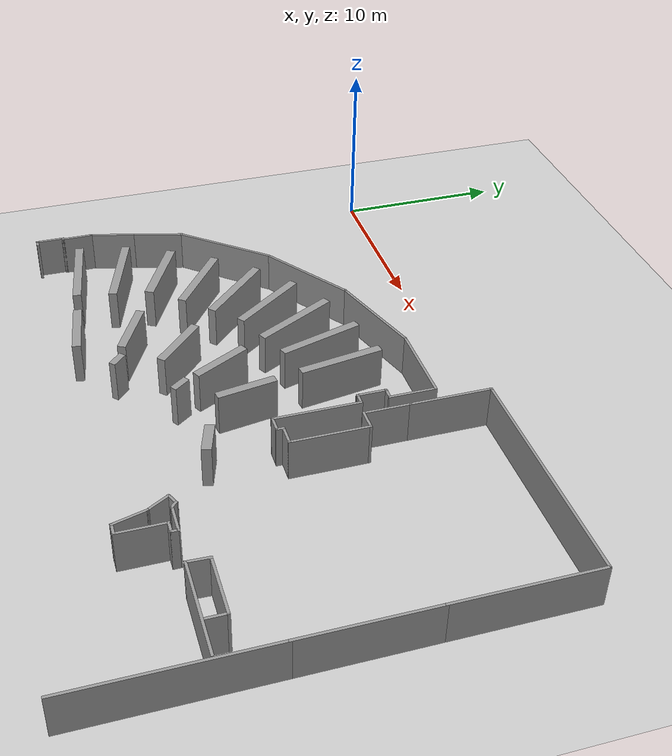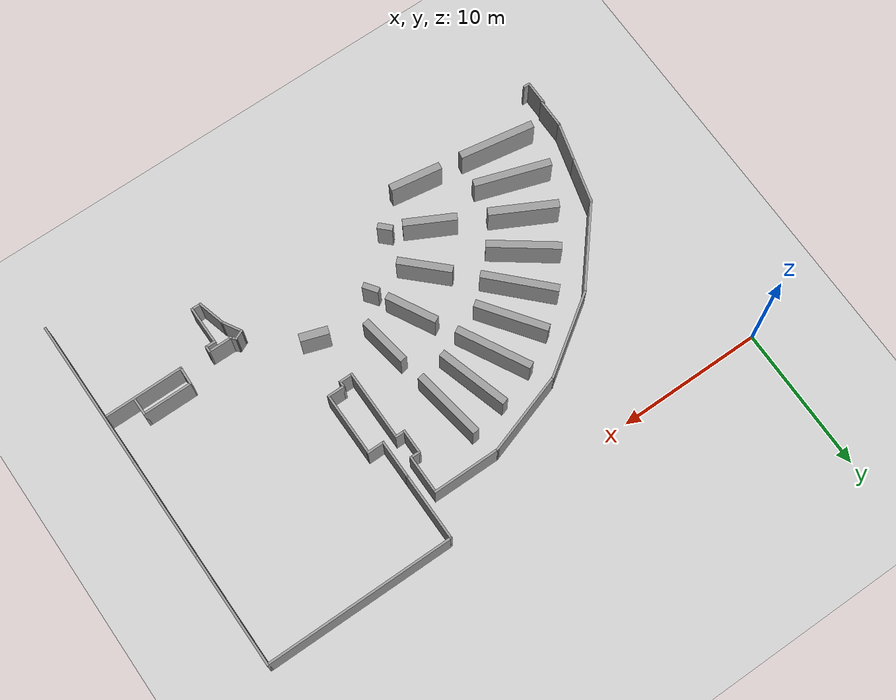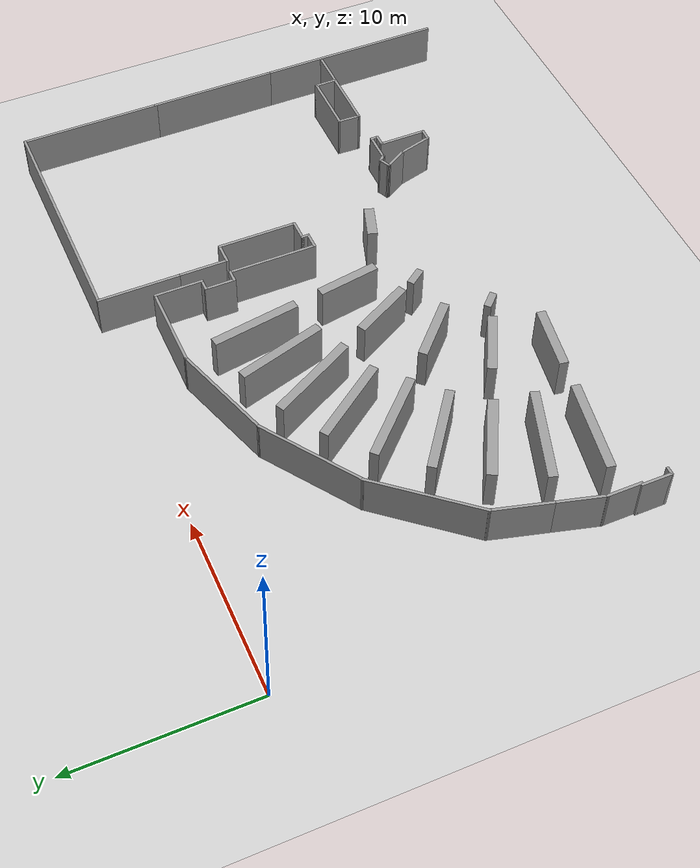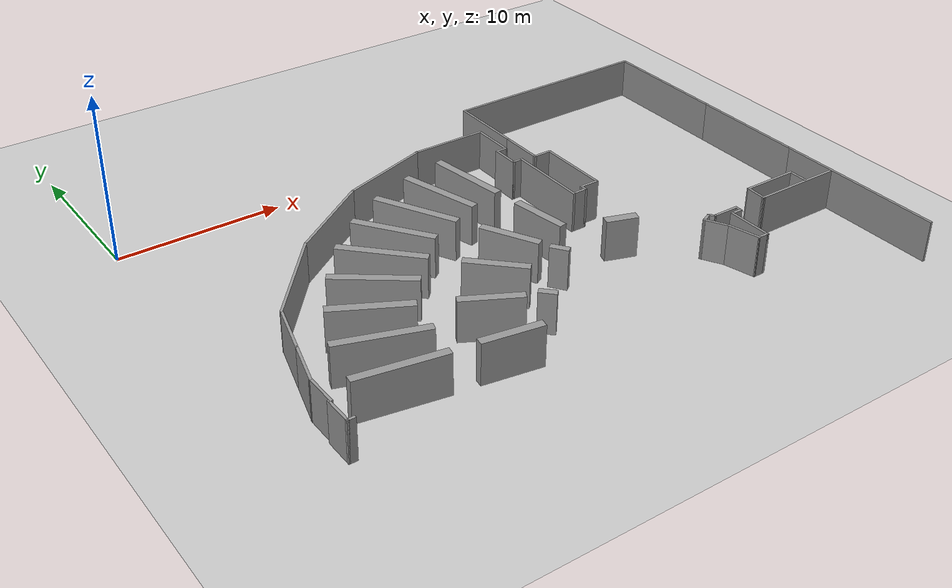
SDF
<sdf version="1.7">
 <world name="default">
  <model name="ground_plane">
   <static>1</static>
   <link name="link">
    <collision name="collision">
     <geometry><plane><normal>0 0 1</normal><size>100 100</size></plane></geometry>
     <surface>
      <contact><collide_bitmask>65535</collide_bitmask></contact>
      <friction><ode><mu>100</mu><mu2>50</mu2></ode></friction>
     </surface>
    </collision>
    <visual name="visual">
     <cast_shadows>0</cast_shadows>
     <geometry><plane><normal>0 0 1</normal><size>100 100</size></plane></geometry>
     <material>
      <script><uri>file://media/materials/scripts/gazebo.material</uri><name>Gazebo/Grey</name></script>
     </material>
    </visual>
   </link>
  </model>
  <model name="libraryModel">
   <pose>18.25 -18.5 0 0 -0 0</pose>
   <link name="Wall_101">
    <collision name="Wall_101_Collision">
     <geometry><box><size>1.5 0.15 2.5</size></box></geometry>
     <pose>0 0 1.25 0 -0 0</pose>
    </collision>
    <visual name="Wall_101_Visual">
     <pose>0 0 1.25 0 -0 0</pose>
     <geometry><box><size>1.5 0.15 2.5</size></box></geometry>
     <material>
      <script><uri>file://media/materials/scripts/gazebo.material</uri><name>Gazebo/Grey</name></script>
      <ambient>1 1 1 1</ambient>
     </material>
     <meta><layer>0</layer></meta>
    </visual>
    <pose>8.65885 -0.242249 0 0 -0 -1.0472</pose>
   </link>
   <link name="Wall_102">
    <collision name="Wall_102_Collision">
     <geometry><box><size>2 0.15 2.5</size></box></geometry>
     <pose>0 0 1.25 0 -0 0</pose>
    </collision>
    <visual name="Wall_102_Visual">
     <pose>0 0 1.25 0 -0 0</pose>
     <geometry><box><size>2 0.15 2.5</size></box></geometry>
     <material>
      <script><uri>file://media/materials/scripts/gazebo.material</uri><name>Gazebo/Grey</name></script>
      <ambient>1 1 1 1</ambient>
     </material>
     <meta><layer>0</layer></meta>
    </visual>
    <pose>9.23576 -1.7203 0 0 -0 -1.309</pose>
   </link>
   <link name="Wall_103">
    <collision name="Wall_103_Collision">
     <geometry><box><size>0.75 0.15 2.5</size></box></geometry>
     <pose>0 0 1.25 0 -0 0</pose>
    </collision>
    <visual name="Wall_103_Visual">
     <pose>0 0 1.25 0 -0 0</pose>
     <geometry><box><size>0.75 0.15 2.5</size></box></geometry>
     <material>
      <script><uri>file://media/materials/scripts/gazebo.material</uri><name>Gazebo/Grey</name></script>
      <ambient>1 1 1 1</ambient>
     </material>
     <meta><layer>0</layer></meta>
    </visual>
    <pose>9.77517 -2.61378 0 0 -0 0</pose>
   </link>
   <link name="Wall_104">
    <collision name="Wall_104_Collision">
     <geometry><box><size>2.75 0.15 2.5</size></box></geometry>
     <pose>0 0 1.25 0 -0 0</pose>
    </collision>
    <visual name="Wall_104_Visual">
     <pose>0 0 1.25 0 -0 0</pose>
     <geometry><box><size>2.75 0.15 2.5</size></box></geometry>
     <material>
      <script><uri>file://media/materials/scripts/gazebo.material</uri><name>Gazebo/Grey</name></script>
      <ambient>1 1 1 1</ambient>
     </material>
     <meta><layer>0</layer></meta>
    </visual>
    <pose>10.0752 -1.31378 0 0 -0 1.5708</pose>
   </link>
   <link name="Wall_105">
    <collision name="Wall_105_Collision">
     <geometry><box><size>0.75 0.15 2.5</size></box></geometry>
     <pose>0 0 1.25 0 -0 0</pose>
    </collision>
    <visual name="Wall_105_Visual">
     <pose>0 0 1.25 0 -0 0</pose>
     <geometry><box><size>0.75 0.15 2.5</size></box></geometry>
     <material>
      <script><uri>file://media/materials/scripts/gazebo.material</uri><name>Gazebo/Grey</name></script>
      <ambient>1 1 1 1</ambient>
     </material>
     <meta><layer>0</layer></meta>
    </visual>
    <pose>10.3752 -0.013779 0 0 -0 0</pose>
   </link>
   <link name="Wall_106">
    <collision name="Wall_106_Collision">
     <geometry><box><size>0.5 0.15 2.5</size></box></geometry>
     <pose>0 0 1.25 0 -0 0</pose>
    </collision>
    <visual name="Wall_106_Visual">
     <pose>0 0 1.25 0 -0 0</pose>
     <geometry><box><size>0.5 0.15 2.5</size></box></geometry>
     <material>
      <script><uri>file://media/materials/scripts/gazebo.material</uri><name>Gazebo/Grey</name></script>
      <ambient>1 1 1 1</ambient>
     </material>
     <meta><layer>0</layer></meta>
    </visual>
    <pose>10.6752 0.161222 0 0 -0 1.5708</pose>
   </link>
   <link name="Wall_107">
    <collision name="Wall_107_Collision">
     <geometry><box><size>1.71407 0.15 2.5</size></box></geometry>
     <pose>0 0 1.25 0 -0 0</pose>
    </collision>
    <visual name="Wall_107_Visual">
     <pose>0 0 1.25 0 -0 0</pose>
     <geometry><box><size>1.71407 0.15 2.5</size></box></geometry>
     <material>
      <script><uri>file://media/materials/scripts/gazebo.material</uri><name>Gazebo/Grey</name></script>
      <ambient>1 1 1 1</ambient>
     </material>
     <meta><layer>0</layer></meta>
    </visual>
    <pose>9.89314 0.33927 0 0 -0 3.13769</pose>
   </link>
   <link name="Wall_108">
    <collision name="Wall_108_Collision">
     <geometry><box><size>0.5 0.15 2.5</size></box></geometry>
     <pose>0 0 1.25 0 -0 0</pose>
    </collision>
    <visual name="Wall_108_Visual">
     <pose>0 0 1.25 0 -0 0</pose>
     <geometry><box><size>0.5 0.15 2.5</size></box></geometry>
     <material>
      <script><uri>file://media/materials/scripts/gazebo.material</uri><name>Gazebo/Grey</name></script>
      <ambient>1 1 1 1</ambient>
     </material>
     <meta><layer>0</layer></meta>
    </visual>
    <pose>8.98736 0.466062 0 0 -0 2.35619</pose>
   </link>
   <link name="Wall_109">
    <collision name="Wall_109_Collision">
     <geometry><box><size>0.746074 0.15 2.5</size></box></geometry>
     <pose>0 0 1.25 0 -0 0</pose>
    </collision>
    <visual name="Wall_109_Visual">
     <pose>0 0 1.25 0 -0 0</pose>
     <geometry><box><size>0.746074 0.15 2.5</size></box></geometry>
     <material>
      <script><uri>file://media/materials/scripts/gazebo.material</uri><name>Gazebo/Grey</name></script>
      <ambient>1 1 1 1</ambient>
     </material>
     <meta><layer>0</layer></meta>
    </visual>
    <pose>8.59248 0.466062 0 0 -0 -2.71344</pose>
   </link>
   <link name="Wall_111">
    <collision name="Wall_111_Collision">
     <geometry><box><size>5.5 0.15 2.5</size></box></geometry>
     <pose>0 0 1.25 0 -0 0</pose>
    </collision>
    <visual name="Wall_111_Visual">
     <pose>0 0 1.25 0 -0 0</pose>
     <geometry><box><size>5.5 0.15 2.5</size></box></geometry>
     <material>
      <script><uri>file://media/materials/scripts/gazebo.material</uri><name>Gazebo/Grey</name></script>
      <ambient>1 1 1 1</ambient>
     </material>
     <meta><layer>0</layer></meta>
    </visual>
    <pose>15.3789 0.231085 0 0 -0 0</pose>
   </link>
   <link name="Wall_127">
    <collision name="Wall_127_Collision">
     <geometry><box><size>5.22507 0.5 2.5</size></box></geometry>
     <pose>0 0 1.25 0 -0 0</pose>
    </collision>
    <visual name="Wall_127_Visual">
     <pose>0 0 1.25 0 -0 0</pose>
     <geometry><box><size>5.22507 0.5 2.5</size></box></geometry>
     <material>
      <script><uri>file://media/materials/scripts/gazebo.material</uri><name>Gazebo/Grey</name></script>
      <ambient>1 1 1 1</ambient>
     </material>
     <meta><layer>0</layer></meta>
    </visual>
    <pose>-3.93287 10.2258 0 0 -0 -1.08254</pose>
   </link>
   <link name="Wall_129">
    <collision name="Wall_129_Collision">
     <geometry><box><size>4.93346 0.5 2.5</size></box></geometry>
     <pose>0 0 1.25 0 -0 0</pose>
    </collision>
    <visual name="Wall_129_Visual">
     <pose>0 0 1.25 0 -0 0</pose>
     <geometry><box><size>4.93346 0.5 2.5</size></box></geometry>
     <material>
      <script><uri>file://media/materials/scripts/gazebo.material</uri><name>Gazebo/Grey</name></script>
      <ambient>1 1 1 1</ambient>
     </material>
     <meta><layer>0</layer></meta>
    </visual>
    <pose>-6.04805 9.1613 0 0 -0 -0.94688</pose>
   </link>
   <link name="Wall_131">
    <collision name="Wall_131_Collision">
     <geometry><box><size>5.07999 0.5 2.5</size></box></geometry>
     <pose>0 0 1.25 0 -0 0</pose>
    </collision>
    <visual name="Wall_131_Visual">
     <pose>0 0 1.25 0 -0 0</pose>
     <geometry><box><size>5.07999 0.5 2.5</size></box></geometry>
     <material>
      <script><uri>file://media/materials/scripts/gazebo.material</uri><name>Gazebo/Grey</name></script>
      <ambient>1 1 1 1</ambient>
     </material>
     <meta><layer>0</layer></meta>
    </visual>
    <pose>-7.78959 7.59265 0 0 -0 -0.798745</pose>
   </link>
   <link name="Wall_133">
    <collision name="Wall_133_Collision">
     <geometry><box><size>4.8492 0.5 2.5</size></box></geometry>
     <pose>0 0 1.25 0 -0 0</pose>
    </collision>
    <visual name="Wall_133_Visual">
     <pose>0 0 1.25 0 -0 0</pose>
     <geometry><box><size>4.8492 0.5 2.5</size></box></geometry>
     <material>
      <script><uri>file://media/materials/scripts/gazebo.material</uri><name>Gazebo/Grey</name></script>
      <ambient>1 1 1 1</ambient>
     </material>
     <meta><layer>0</layer></meta>
    </visual>
    <pose>-9.4245 5.75038 0 0 -0 -0.638036</pose>
   </link>
   <link name="Wall_135">
    <collision name="Wall_135_Collision">
     <geometry><box><size>4.61323 0.55 2.5</size></box></geometry>
     <pose>0 0 1.25 0 -0 0</pose>
    </collision>
    <visual name="Wall_135_Visual">
     <pose>0 0 1.25 0 -0 0</pose>
     <geometry><box><size>4.61323 0.55 2.5</size></box></geometry>
     <material>
      <script><uri>file://media/materials/scripts/gazebo.material</uri><name>Gazebo/Grey</name></script>
      <ambient>1 1 1 1</ambient>
     </material>
     <meta><layer>0</layer></meta>
    </visual>
    <pose>-10.8759 3.67924 0 0 -0 2.65712</pose>
   </link>
   <link name="Wall_137">
    <collision name="Wall_137_Collision">
     <geometry><box><size>5.21597 0.5 2.5</size></box></geometry>
     <pose>0 0 1.25 0 -0 0</pose>
    </collision>
    <visual name="Wall_137_Visual">
     <pose>0 0 1.25 0 -0 0</pose>
     <geometry><box><size>5.21597 0.5 2.5</size></box></geometry>
     <material>
      <script><uri>file://media/materials/scripts/gazebo.material</uri><name>Gazebo/Grey</name></script>
      <ambient>1 1 1 1</ambient>
     </material>
     <meta><layer>0</layer></meta>
    </visual>
    <pose>-11.6954 1.29706 0 0 -0 -0.319369</pose>
   </link>
   <link name="Wall_139">
    <collision name="Wall_139_Collision">
     <geometry><box><size>5.16361 0.5 2.5</size></box></geometry>
     <pose>0 0 1.25 0 -0 0</pose>
    </collision>
    <visual name="Wall_139_Visual">
     <pose>0 0 1.25 0 -0 0</pose>
     <geometry><box><size>5.16361 0.5 2.5</size></box></geometry>
     <material>
      <script><uri>file://media/materials/scripts/gazebo.material</uri><name>Gazebo/Grey</name></script>
      <ambient>1 1 1 1</ambient>
     </material>
     <meta><layer>0</layer></meta>
    </visual>
    <pose>-12.2101 -1.15593 0 0 -0 -0.16715</pose>
   </link>
   <link name="Wall_141">
    <collision name="Wall_141_Collision">
     <geometry><box><size>3.55121 0.5 2.5</size></box></geometry>
     <pose>0 0 1.25 0 -0 0</pose>
    </collision>
    <visual name="Wall_141_Visual">
     <pose>0 0 1.25 0 -0 0</pose>
     <geometry><box><size>3.55121 0.5 2.5</size></box></geometry>
     <material>
      <script><uri>file://media/materials/scripts/gazebo.material</uri><name>Gazebo/Grey</name></script>
      <ambient>1 1 1 1</ambient>
     </material>
     <meta><layer>0</layer></meta>
    </visual>
    <pose>-6.4409 -2.02681 0 0 -0 -0.155446</pose>
   </link>
   <link name="Wall_143">
    <collision name="Wall_143_Collision">
     <geometry><box><size>3.51982 0.5 2.5</size></box></geometry>
     <pose>0 0 1.25 0 -0 0</pose>
    </collision>
    <visual name="Wall_143_Visual">
     <pose>0 0 1.25 0 -0 0</pose>
     <geometry><box><size>3.51982 0.5 2.5</size></box></geometry>
     <material>
      <script><uri>file://media/materials/scripts/gazebo.material</uri><name>Gazebo/Grey</name></script>
      <ambient>1 1 1 1</ambient>
     </material>
     <meta><layer>0</layer></meta>
    </visual>
    <pose>-5.51879 0.933116 0 0 -0 -0.483926</pose>
   </link>
   <link name="Wall_145">
    <collision name="Wall_145_Collision">
     <geometry><box><size>3.61835 0.5 2.5</size></box></geometry>
     <pose>0 0 1.25 0 -0 0</pose>
    </collision>
    <visual name="Wall_145_Visual">
     <pose>0 0 1.25 0 -0 0</pose>
     <geometry><box><size>3.61835 0.5 2.5</size></box></geometry>
     <material>
      <script><uri>file://media/materials/scripts/gazebo.material</uri><name>Gazebo/Grey</name></script>
      <ambient>1 1 1 1</ambient>
     </material>
     <meta><layer>0</layer></meta>
    </visual>
    <pose>-3.51427 3.27261 0 0 -0 -0.772674</pose>
   </link>
   <link name="Wall_147">
    <collision name="Wall_147_Collision">
     <geometry><box><size>3.54199 0.5 2.5</size></box></geometry>
     <pose>0 0 1.25 0 -0 0</pose>
    </collision>
    <visual name="Wall_147_Visual">
     <pose>0 0 1.25 0 -0 0</pose>
     <geometry><box><size>3.54199 0.5 2.5</size></box></geometry>
     <material>
      <script><uri>file://media/materials/scripts/gazebo.material</uri><name>Gazebo/Grey</name></script>
      <ambient>1 1 1 1</ambient>
     </material>
     <meta><layer>0</layer></meta>
    </visual>
    <pose>-1.21875 5.15505 0 0 -0 -1.08263</pose>
   </link>
   <link name="Wall_149">
    <collision name="Wall_149_Collision">
     <geometry><box><size>3.46346 0.5 2.5</size></box></geometry>
     <pose>0 0 1.25 0 -0 0</pose>
    </collision>
    <visual name="Wall_149_Visual">
     <pose>0 0 1.25 0 -0 0</pose>
     <geometry><box><size>3.46346 0.5 2.5</size></box></geometry>
     <material>
      <script><uri>file://media/materials/scripts/gazebo.material</uri><name>Gazebo/Grey</name></script>
      <ambient>1 1 1 1</ambient>
     </material>
     <meta><layer>0</layer></meta>
    </visual>
    <pose>1.38052 5.95619 0 0 -0 -1.41247</pose>
   </link>
   <link name="Wall_15">
    <collision name="Wall_15_Collision">
     <geometry><box><size>0.5 0.15 2.5</size></box></geometry>
     <pose>0 0 1.25 0 -0 0</pose>
    </collision>
    <visual name="Wall_15_Visual">
     <pose>0 0 1.25 0 -0 0</pose>
     <geometry><box><size>0.5 0.15 2.5</size></box></geometry>
     <material>
      <script><uri>file://media/materials/scripts/gazebo.material</uri><name>Gazebo/Grey</name></script>
      <ambient>1 1 1 1</ambient>
     </material>
     <meta><layer>0</layer></meta>
    </visual>
    <pose>-16.0713 -3.1742 0 0 -0 3.14159</pose>
   </link>
   <link name="Wall_152">
    <collision name="Wall_152_Collision">
     <geometry><box><size>5.03352 0.5 2.5</size></box></geometry>
     <pose>0 0 1.25 0 -0 0</pose>
    </collision>
    <visual name="Wall_152_Visual">
     <pose>0 0 1.25 0 -0 0</pose>
     <geometry><box><size>5.03352 0.5 2.5</size></box></geometry>
     <material>
      <script><uri>file://media/materials/scripts/gazebo.material</uri><name>Gazebo/Grey</name></script>
      <ambient>1 1 1 1</ambient>
     </material>
     <meta><layer>0</layer></meta>
    </visual>
    <pose>-1.76386 11.0787 0 0 -0 -1.28734</pose>
   </link>
   <link name="Wall_154">
    <collision name="Wall_154_Collision">
     <geometry><box><size>4.92429 0.5 2.5</size></box></geometry>
     <pose>0 0 1.25 0 -0 0</pose>
    </collision>
    <visual name="Wall_154_Visual">
     <pose>0 0 1.25 0 -0 0</pose>
     <geometry><box><size>4.92429 0.5 2.5</size></box></geometry>
     <material>
      <script><uri>file://media/materials/scripts/gazebo.material</uri><name>Gazebo/Grey</name></script>
      <ambient>1 1 1 1</ambient>
     </material>
     <meta><layer>0</layer></meta>
    </visual>
    <pose>0.478676 11.5802 0 0 -0 -1.4162</pose>
   </link>
   <link name="Wall_157">
    <collision name="Wall_157_Collision">
     <geometry><box><size>1.25 0.15 2.5</size></box></geometry>
     <pose>0 0 1.25 0 -0 0</pose>
    </collision>
    <visual name="Wall_157_Visual">
     <pose>0 0 1.25 0 -0 0</pose>
     <geometry><box><size>1.25 0.15 2.5</size></box></geometry>
     <material>
      <script><uri>file://media/materials/scripts/gazebo.material</uri><name>Gazebo/Grey</name></script>
      <ambient>1 1 1 1</ambient>
     </material>
     <meta><layer>0</layer></meta>
    </visual>
    <pose>16.0983 0.865296 0 0 -0 1.5708</pose>
   </link>
   <link name="Wall_158">
    <collision name="Wall_158_Collision">
     <geometry><box><size>3.5 0.15 2.5</size></box></geometry>
     <pose>0 0 1.25 0 -0 0</pose>
    </collision>
    <visual name="Wall_158_Visual">
     <pose>0 0 1.25 0 -0 0</pose>
     <geometry><box><size>3.5 0.15 2.5</size></box></geometry>
     <material>
      <script><uri>file://media/materials/scripts/gazebo.material</uri><name>Gazebo/Grey</name></script>
      <ambient>1 1 1 1</ambient>
     </material>
     <meta><layer>0</layer></meta>
    </visual>
    <pose>14.4233 1.4153 0 0 -0 3.14159</pose>
   </link>
   <link name="Wall_159">
    <collision name="Wall_159_Collision">
     <geometry><box><size>1.33504 0.15 2.5</size></box></geometry>
     <pose>0 0 1.25 0 -0 0</pose>
    </collision>
    <visual name="Wall_159_Visual">
     <pose>0 0 1.25 0 -0 0</pose>
     <geometry><box><size>1.33504 0.15 2.5</size></box></geometry>
     <material>
      <script><uri>file://media/materials/scripts/gazebo.material</uri><name>Gazebo/Grey</name></script>
      <ambient>1 1 1 1</ambient>
     </material>
     <meta><layer>0</layer></meta>
    </visual>
    <pose>12.7261 0.823191 0 0 -0 -1.60824</pose>
   </link>
   <link name="Wall_16">
    <collision name="Wall_16_Collision">
     <geometry><box><size>1.75 0.15 2.5</size></box></geometry>
     <pose>0 0 1.25 0 -0 0</pose>
    </collision>
    <visual name="Wall_16_Visual">
     <pose>0 0 1.25 0 -0 0</pose>
     <geometry><box><size>1.75 0.15 2.5</size></box></geometry>
     <material>
      <script><uri>file://media/materials/scripts/gazebo.material</uri><name>Gazebo/Grey</name></script>
      <ambient>1 1 1 1</ambient>
     </material>
     <meta><layer>0</layer></meta>
    </visual>
    <pose>-16.2463 -2.3742 0 0 -0 1.5708</pose>
   </link>
   <link name="Wall_17">
    <collision name="Wall_17_Collision">
     <geometry><box><size>0.25 0.15 2.5</size></box></geometry>
     <pose>0 0 1.25 0 -0 0</pose>
    </collision>
    <visual name="Wall_17_Visual">
     <pose>0 0 1.25 0 -0 0</pose>
     <geometry><box><size>0.25 0.15 2.5</size></box></geometry>
     <material>
      <script><uri>file://media/materials/scripts/gazebo.material</uri><name>Gazebo/Grey</name></script>
      <ambient>1 1 1 1</ambient>
     </material>
     <meta><layer>0</layer></meta>
    </visual>
    <pose>-16.1963 -1.5742 0 0 -0 0</pose>
   </link>
   <link name="Wall_18">
    <collision name="Wall_18_Collision">
     <geometry><box><size>2 0.15 2.5</size></box></geometry>
     <pose>0 0 1.25 0 -0 0</pose>
    </collision>
    <visual name="Wall_18_Visual">
     <pose>0 0 1.25 0 -0 0</pose>
     <geometry><box><size>2 0.15 2.5</size></box></geometry>
     <material>
      <script><uri>file://media/materials/scripts/gazebo.material</uri><name>Gazebo/Grey</name></script>
      <ambient>1 1 1 1</ambient>
     </material>
     <meta><layer>0</layer></meta>
    </visual>
    <pose>-16.1463 -0.649204 0 0 -0 1.5708</pose>
   </link>
   <link name="Wall_19">
    <collision name="Wall_19_Collision">
     <geometry><box><size>2.75 0.15 2.5</size></box></geometry>
     <pose>0 0 1.25 0 -0 0</pose>
    </collision>
    <visual name="Wall_19_Visual">
     <pose>0 0 1.25 0 -0 0</pose>
     <geometry><box><size>2.75 0.15 2.5</size></box></geometry>
     <material>
      <script><uri>file://media/materials/scripts/gazebo.material</uri><name>Gazebo/Grey</name></script>
      <ambient>1 1 1 1</ambient>
     </material>
     <meta><layer>0</layer></meta>
    </visual>
    <pose>-15.8099 1.5315 0 0 -0 1.309</pose>
   </link>
   <link name="Wall_21">
    <collision name="Wall_21_Collision">
     <geometry><box><size>3.25 0.15 2.5</size></box></geometry>
     <pose>0 0 1.25 0 -0 0</pose>
    </collision>
    <visual name="Wall_21_Visual">
     <pose>0 0 1.25 0 -0 0</pose>
     <geometry><box><size>3.25 0.15 2.5</size></box></geometry>
     <material>
      <script><uri>file://media/materials/scripts/gazebo.material</uri><name>Gazebo/Grey</name></script>
      <ambient>1 1 1 1</ambient>
     </material>
     <meta><layer>0</layer></meta>
    </visual>
    <pose>-15.0723 4.28439 0 0 -0 1.309</pose>
   </link>
   <link name="Wall_22">
    <collision name="Wall_22_Collision">
     <geometry><box><size>6.32238 0.15 2.5</size></box></geometry>
     <pose>0 0 1.25 0 -0 0</pose>
    </collision>
    <visual name="Wall_22_Visual">
     <pose>0 0 1.25 0 -0 0</pose>
     <geometry><box><size>6.32238 0.15 2.5</size></box></geometry>
     <material>
      <script><uri>file://media/materials/scripts/gazebo.material</uri><name>Gazebo/Grey</name></script>
      <ambient>1 1 1 1</ambient>
     </material>
     <meta><layer>0</layer></meta>
    </visual>
    <pose>-12.6884 8.14661 0 0 -0 0.873106</pose>
   </link>
   <link name="Wall_24">
    <collision name="Wall_24_Collision">
     <geometry><box><size>6.12348 0.15 2.5</size></box></geometry>
     <pose>0 0 1.25 0 -0 0</pose>
    </collision>
    <visual name="Wall_24_Visual">
     <pose>0 0 1.25 0 -0 0</pose>
     <geometry><box><size>6.12348 0.15 2.5</size></box></geometry>
     <material>
      <script><uri>file://media/materials/scripts/gazebo.material</uri><name>Gazebo/Grey</name></script>
      <ambient>1 1 1 1</ambient>
     </material>
     <meta><layer>0</layer></meta>
    </visual>
    <pose>-8.24419 12.2034 0 0 -0 0.602142</pose>
   </link>
   <link name="Wall_25">
    <collision name="Wall_25_Collision">
     <geometry><box><size>5.89571 0.15 2.5</size></box></geometry>
     <pose>0 0 1.25 0 -0 0</pose>
    </collision>
    <visual name="Wall_25_Visual">
     <pose>0 0 1.25 0 -0 0</pose>
     <geometry><box><size>5.89571 0.15 2.5</size></box></geometry>
     <material>
      <script><uri>file://media/materials/scripts/gazebo.material</uri><name>Gazebo/Grey</name></script>
      <ambient>1 1 1 1</ambient>
     </material>
     <meta><layer>0</layer></meta>
    </visual>
    <pose>-3.05062 14.7832 0 0 -0 0.314302</pose>
   </link>
   <link name="Wall_26">
    <collision name="Wall_26_Collision">
     <geometry><box><size>4.75 0.15 2.5</size></box></geometry>
     <pose>0 0 1.25 0 -0 0</pose>
    </collision>
    <visual name="Wall_26_Visual">
     <pose>0 0 1.25 0 -0 0</pose>
     <geometry><box><size>4.75 0.15 2.5</size></box></geometry>
     <material>
      <script><uri>file://media/materials/scripts/gazebo.material</uri><name>Gazebo/Grey</name></script>
      <ambient>1 1 1 1</ambient>
     </material>
     <meta><layer>0</layer></meta>
    </visual>
    <pose>1.9817 15.6714 0 0 -0 2e-06</pose>
   </link>
   <link name="Wall_27">
    <collision name="Wall_27_Collision">
     <geometry><box><size>2.75 0.15 2.5</size></box></geometry>
     <pose>0 0 1.25 0 -0 0</pose>
    </collision>
    <visual name="Wall_27_Visual">
     <pose>0 0 1.25 0 -0 0</pose>
     <geometry><box><size>2.75 0.15 2.5</size></box></geometry>
     <material>
      <script><uri>file://media/materials/scripts/gazebo.material</uri><name>Gazebo/Grey</name></script>
      <ambient>1 1 1 1</ambient>
     </material>
     <meta><layer>0</layer></meta>
    </visual>
    <pose>4.28189 14.3714 0 0 -0 -1.5708</pose>
   </link>
   <link name="Wall_28">
    <collision name="Wall_28_Collision">
     <geometry><box><size>0.75 0.15 2.5</size></box></geometry>
     <pose>0 0 1.25 0 -0 0</pose>
    </collision>
    <visual name="Wall_28_Visual">
     <pose>0 0 1.25 0 -0 0</pose>
     <geometry><box><size>0.75 0.15 2.5</size></box></geometry>
     <material>
      <script><uri>file://media/materials/scripts/gazebo.material</uri><name>Gazebo/Grey</name></script>
      <ambient>1 1 1 1</ambient>
     </material>
     <meta><layer>0</layer></meta>
    </visual>
    <pose>3.9817 13.0714 0 0 -0 -3.14158</pose>
   </link>
   <link name="Wall_29">
    <collision name="Wall_29_Collision">
     <geometry><box><size>1.75 0.15 2.5</size></box></geometry>
     <pose>0 0 1.25 0 -0 0</pose>
    </collision>
    <visual name="Wall_29_Visual">
     <pose>0 0 1.25 0 -0 0</pose>
     <geometry><box><size>1.75 0.15 2.5</size></box></geometry>
     <material>
      <script><uri>file://media/materials/scripts/gazebo.material</uri><name>Gazebo/Grey</name></script>
      <ambient>1 1 1 1</ambient>
     </material>
     <meta><layer>0</layer></meta>
    </visual>
    <pose>3.6815 12.2714 0 0 -0 -1.5708</pose>
   </link>
   <link name="Wall_30">
    <collision name="Wall_30_Collision">
     <geometry><box><size>0.75 0.15 2.5</size></box></geometry>
     <pose>0 0 1.25 0 -0 0</pose>
    </collision>
    <visual name="Wall_30_Visual">
     <pose>0 0 1.25 0 -0 0</pose>
     <geometry><box><size>0.75 0.15 2.5</size></box></geometry>
     <material>
      <script><uri>file://media/materials/scripts/gazebo.material</uri><name>Gazebo/Grey</name></script>
      <ambient>1 1 1 1</ambient>
     </material>
     <meta><layer>0</layer></meta>
    </visual>
    <pose>3.9815 11.4714 0 0 -0 0</pose>
   </link>
   <link name="Wall_31">
    <collision name="Wall_31_Collision">
     <geometry><box><size>5 0.15 2.5</size></box></geometry>
     <pose>0 0 1.25 0 -0 0</pose>
    </collision>
    <visual name="Wall_31_Visual">
     <pose>0 0 1.25 0 -0 0</pose>
     <geometry><box><size>5 0.15 2.5</size></box></geometry>
     <material>
      <script><uri>file://media/materials/scripts/gazebo.material</uri><name>Gazebo/Grey</name></script>
      <ambient>1 1 1 1</ambient>
     </material>
     <meta><layer>0</layer></meta>
    </visual>
    <pose>4.2815 9.04638 0 0 -0 -1.5708</pose>
   </link>
   <link name="Wall_33">
    <collision name="Wall_33_Collision">
     <geometry><box><size>1 0.15 2.5</size></box></geometry>
     <pose>0 0 1.25 0 -0 0</pose>
    </collision>
    <visual name="Wall_33_Visual">
     <pose>0 0 1.25 0 -0 0</pose>
     <geometry><box><size>1 0.15 2.5</size></box></geometry>
     <material>
      <script><uri>file://media/materials/scripts/gazebo.material</uri><name>Gazebo/Grey</name></script>
      <ambient>1 1 1 1</ambient>
     </material>
     <meta><layer>0</layer></meta>
    </visual>
    <pose>4.7065 6.62138 0 0 -0 0</pose>
   </link>
   <link name="Wall_34">
    <collision name="Wall_34_Collision">
     <geometry><box><size>0.5 0.15 2.5</size></box></geometry>
     <pose>0 0 1.25 0 -0 0</pose>
    </collision>
    <visual name="Wall_34_Visual">
     <pose>0 0 1.25 0 -0 0</pose>
     <geometry><box><size>0.5 0.15 2.5</size></box></geometry>
     <material>
      <script><uri>file://media/materials/scripts/gazebo.material</uri><name>Gazebo/Grey</name></script>
      <ambient>1 1 1 1</ambient>
     </material>
     <meta><layer>0</layer></meta>
    </visual>
    <pose>5.1315 6.79638 0 0 -0 1.5708</pose>
   </link>
   <link name="Wall_35">
    <collision name="Wall_35_Collision">
     <geometry><box><size>1.25 0.15 2.5</size></box></geometry>
     <pose>0 0 1.25 0 -0 0</pose>
    </collision>
    <visual name="Wall_35_Visual">
     <pose>0 0 1.25 0 -0 0</pose>
     <geometry><box><size>1.25 0.15 2.5</size></box></geometry>
     <material>
      <script><uri>file://media/materials/scripts/gazebo.material</uri><name>Gazebo/Grey</name></script>
      <ambient>1 1 1 1</ambient>
     </material>
     <meta><layer>0</layer></meta>
    </visual>
    <pose>5.6815 6.97138 0 0 -0 0</pose>
   </link>
   <link name="Wall_36">
    <collision name="Wall_36_Collision">
     <geometry><box><size>4.5 0.15 2.5</size></box></geometry>
     <pose>0 0 1.25 0 -0 0</pose>
    </collision>
    <visual name="Wall_36_Visual">
     <pose>0 0 1.25 0 -0 0</pose>
     <geometry><box><size>4.5 0.15 2.5</size></box></geometry>
     <material>
      <script><uri>file://media/materials/scripts/gazebo.material</uri><name>Gazebo/Grey</name></script>
      <ambient>1 1 1 1</ambient>
     </material>
     <meta><layer>0</layer></meta>
    </visual>
    <pose>6.2315 9.14638 0 0 -0 1.5708</pose>
   </link>
   <link name="Wall_37">
    <collision name="Wall_37_Collision">
     <geometry><box><size>1.25 0.15 2.5</size></box></geometry>
     <pose>0 0 1.25 0 -0 0</pose>
    </collision>
    <visual name="Wall_37_Visual">
     <pose>0 0 1.25 0 -0 0</pose>
     <geometry><box><size>1.25 0.15 2.5</size></box></geometry>
     <material>
      <script><uri>file://media/materials/scripts/gazebo.material</uri><name>Gazebo/Grey</name></script>
      <ambient>1 1 1 1</ambient>
     </material>
     <meta><layer>0</layer></meta>
    </visual>
    <pose>5.6815 11.3214 0 0 -0 3.14159</pose>
   </link>
   <link name="Wall_38">
    <collision name="Wall_38_Collision">
     <geometry><box><size>2.75 0.15 2.5</size></box></geometry>
     <pose>0 0 1.25 0 -0 0</pose>
    </collision>
    <visual name="Wall_38_Visual">
     <pose>0 0 1.25 0 -0 0</pose>
     <geometry><box><size>2.75 0.15 2.5</size></box></geometry>
     <material>
      <script><uri>file://media/materials/scripts/gazebo.material</uri><name>Gazebo/Grey</name></script>
      <ambient>1 1 1 1</ambient>
     </material>
     <meta><layer>0</layer></meta>
    </visual>
    <pose>5.1315 12.6214 0 0 -0 1.5708</pose>
   </link>
   <link name="Wall_40">
    <collision name="Wall_40_Collision">
     <geometry><box><size>4.75 0.15 2.5</size></box></geometry>
     <pose>0 0 1.25 0 -0 0</pose>
    </collision>
    <visual name="Wall_40_Visual">
     <pose>0 0 1.25 0 -0 0</pose>
     <geometry><box><size>4.75 0.15 2.5</size></box></geometry>
     <material>
      <script><uri>file://media/materials/scripts/gazebo.material</uri><name>Gazebo/Grey</name></script>
      <ambient>1 1 1 1</ambient>
     </material>
     <meta><layer>0</layer></meta>
    </visual>
    <pose>5.1315 16.2214 0 0 -0 1.5708</pose>
   </link>
   <link name="Wall_41">
    <collision name="Wall_41_Collision">
     <geometry><box><size>13.25 0.15 2.5</size></box></geometry>
     <pose>0 0 1.25 0 -0 0</pose>
    </collision>
    <visual name="Wall_41_Visual">
     <pose>0 0 1.25 0 -0 0</pose>
     <geometry><box><size>13.25 0.15 2.5</size></box></geometry>
     <material>
      <script><uri>file://media/materials/scripts/gazebo.material</uri><name>Gazebo/Grey</name></script>
      <ambient>1 1 1 1</ambient>
     </material>
     <meta><layer>0</layer></meta>
    </visual>
    <pose>11.6815 18.5214 0 0 -0 0</pose>
   </link>
   <link name="Wall_42">
    <collision name="Wall_42_Collision">
     <geometry><box><size>8 0.15 2.5</size></box></geometry>
     <pose>0 0 1.25 0 -0 0</pose>
    </collision>
    <visual name="Wall_42_Visual">
     <pose>0 0 1.25 0 -0 0</pose>
     <geometry><box><size>8 0.15 2.5</size></box></geometry>
     <material>
      <script><uri>file://media/materials/scripts/gazebo.material</uri><name>Gazebo/Grey</name></script>
      <ambient>1 1 1 1</ambient>
     </material>
     <meta><layer>0</layer></meta>
    </visual>
    <pose>18.2315 14.5964 0 0 -0 -1.5708</pose>
   </link>
   <link name="Wall_44">
    <collision name="Wall_44_Collision">
     <geometry><box><size>7.25 0.15 2.5</size></box></geometry>
     <pose>0 0 1.25 0 -0 0</pose>
    </collision>
    <visual name="Wall_44_Visual">
     <pose>0 0 1.25 0 -0 0</pose>
     <geometry><box><size>7.25 0.15 2.5</size></box></geometry>
     <material>
      <script><uri>file://media/materials/scripts/gazebo.material</uri><name>Gazebo/Grey</name></script>
      <ambient>1 1 1 1</ambient>
     </material>
     <meta><layer>0</layer></meta>
    </visual>
    <pose>18.2315 7.12138 0 0 -0 -1.5708</pose>
   </link>
   <link name="Wall_47">
    <collision name="Wall_47_Collision">
     <geometry><box><size>10.5 0.15 2.5</size></box></geometry>
     <pose>0 0 1.25 0 -0 0</pose>
    </collision>
    <visual name="Wall_47_Visual">
     <pose>0 0 1.25 0 -0 0</pose>
     <geometry><box><size>10.5 0.15 2.5</size></box></geometry>
     <material>
      <script><uri>file://media/materials/scripts/gazebo.material</uri><name>Gazebo/Grey</name></script>
      <ambient>1 1 1 1</ambient>
     </material>
     <meta><layer>0</layer></meta>
    </visual>
    <pose>18.2315 -1.60362 0 0 -0 -1.5708</pose>
   </link>
   <link name="Wall_93">
    <collision name="Wall_93_Collision">
     <geometry><box><size>1.00104 0.4 2.5</size></box></geometry>
     <pose>0 0 1.25 0 -0 0</pose>
    </collision>
    <visual name="Wall_93_Visual">
     <pose>0 0 1.25 0 -0 0</pose>
     <geometry><box><size>1.00104 0.4 2.5</size></box></geometry>
     <material>
      <script><uri>file://media/materials/scripts/gazebo.material</uri><name>Gazebo/Grey</name></script>
      <ambient>1 1 1 1</ambient>
     </material>
     <meta><layer>0</layer></meta>
    </visual>
    <pose>-2.91261 -0.287112 0 0 -0 -0.785398</pose>
   </link>
   <link name="Wall_97">
    <collision name="Wall_97_Collision">
     <geometry><box><size>1.08045 0.4 2.5</size></box></geometry>
     <pose>0 0 1.25 0 -0 0</pose>
    </collision>
    <visual name="Wall_97_Visual">
     <pose>0 0 1.25 0 -0 0</pose>
     <geometry><box><size>1.08045 0.4 2.5</size></box></geometry>
     <material>
      <script><uri>file://media/materials/scripts/gazebo.material</uri><name>Gazebo/Grey</name></script>
      <ambient>1 1 1 1</ambient>
     </material>
     <meta><layer>0</layer></meta>
    </visual>
    <pose>0.125895 2.59789 0 0 -0 -0.938759</pose>
   </link>
   <link name="Wall_99">
    <collision name="Wall_99_Collision">
     <geometry><box><size>1.89824 0.55 2.5</size></box></geometry>
     <pose>0 0 1.25 0 -0 0</pose>
    </collision>
    <visual name="Wall_99_Visual">
     <pose>0 0 1.25 0 -0 0</pose>
     <geometry><box><size>1.89824 0.55 2.5</size></box></geometry>
     <material>
      <script><uri>file://media/materials/scripts/gazebo.material</uri><name>Gazebo/Grey</name></script>
      <ambient>1 1 1 1</ambient>
     </material>
     <meta><layer>0</layer></meta>
    </visual>
    <pose>4.7489 3.09189 0 0 -0 -0.320578</pose>
   </link>
   <static>1</static>
  </model>
 </world>
</sdf>
